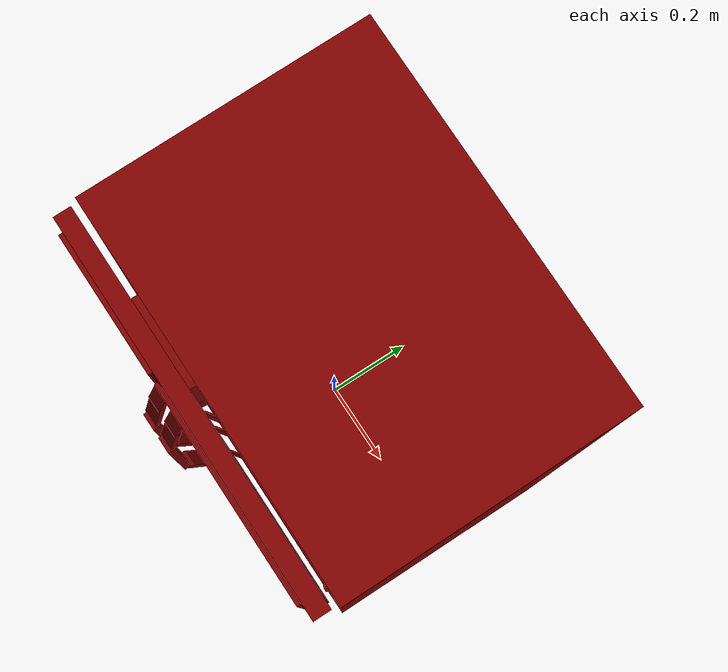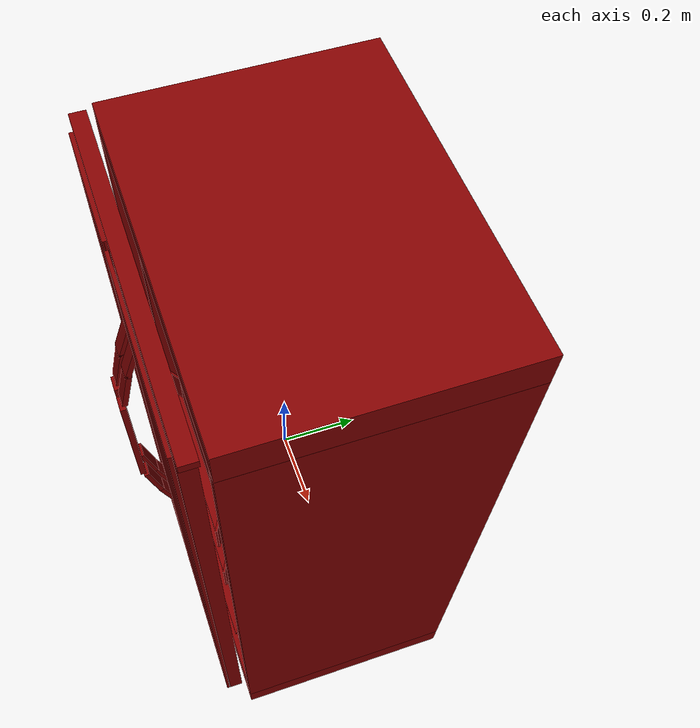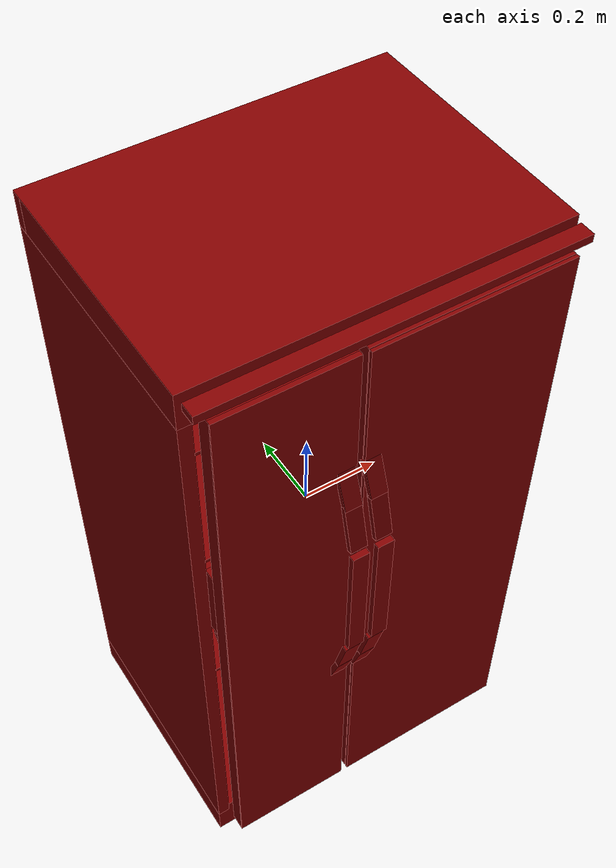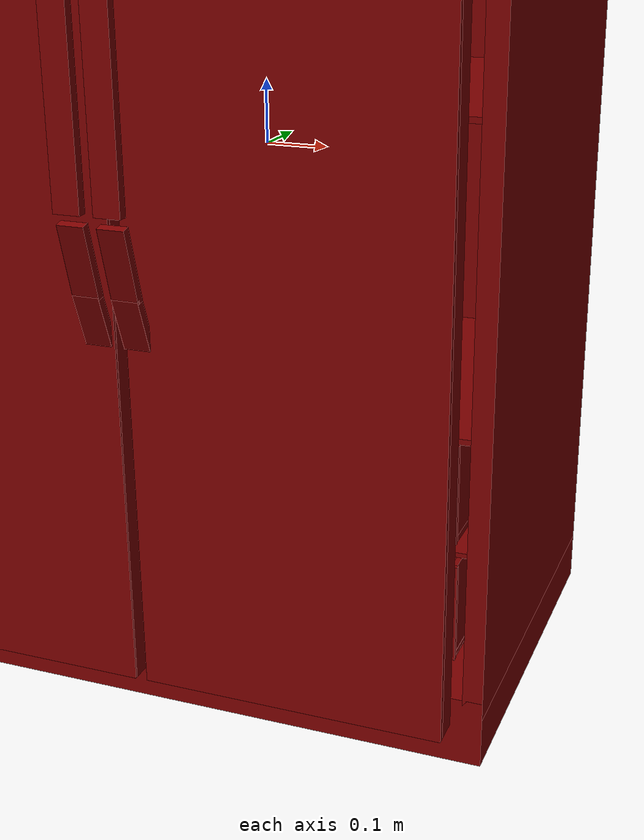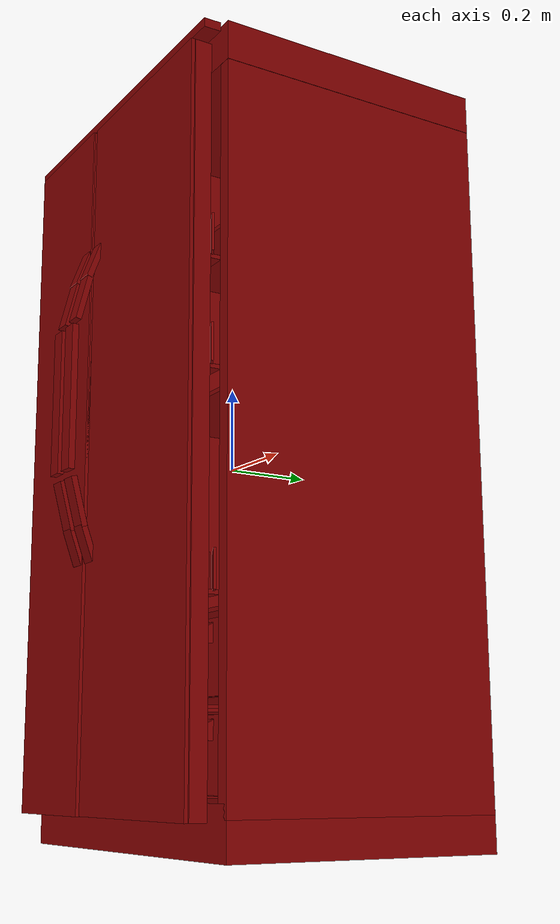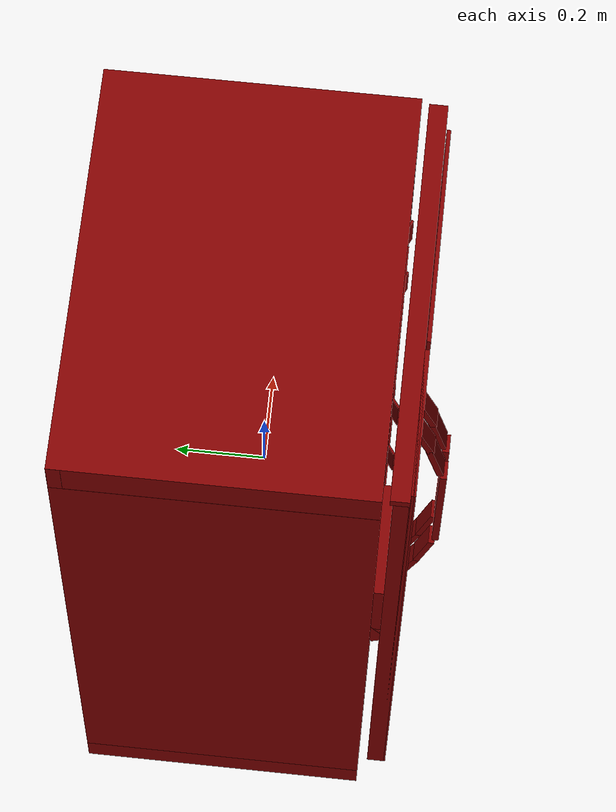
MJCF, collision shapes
<?xml version='1.0' encoding='UTF-8'?>
<mujoco model="model">
  <option timestep="0.002" gravity="0.0 0.0 -9.81"/>
  <compiler angle="radian"/>
  <asset>
    <mesh file="visuals/freezer_door.obj" name="freezer_door_vis"/>
    <mesh file="visuals/fridge_door.obj" name="fridge_door_vis"/>
    <mesh file="visuals/fridge_door_Clear.obj" name="fridge_door_Clear_vis"/>
    <mesh file="visuals/fridge_drawer0.obj" name="fridge_drawer0_vis"/>
    <mesh file="visuals/fridge_drawer1.obj" name="fridge_drawer1_vis"/>
    <mesh file="visuals/Body001.obj" name="Body001_vis"/>
    <mesh file="visuals/Body001_Clear.obj" name="Body001_Clear_vis"/>
    <mesh file="visuals/Body002.obj" name="Body002_vis"/>
    <texture file="visuals/T_BC001.png" name="Body001_material" type="2d"/>
    <material name="Body001_material" rgba="1 1 1 1.0" texture="Body001_material" shininess="3" specular="3"/>
    <texture file="visuals/T_BC001.png" name="freezer_door_material" type="2d"/>
    <material name="freezer_door_material" rgba="1 1 1 1.0" texture="freezer_door_material" shininess="3" specular="3"/>
    <texture file="visuals/T_BC001.png" name="fridge_door_material" type="2d"/>
    <material name="fridge_door_material" rgba="1 1 1 1.0" texture="fridge_door_material" shininess="3" specular="3"/>
    <texture file="visuals/T_BC001.png" name="fridge_door_Clear_material" type="2d"/>
    <material name="fridge_door_Clear_material" rgba="1 1 1 0.699999988079071" texture="fridge_door_Clear_material" shininess="0.4472135901451111" specular="0.3103448502657381"/>
    <texture file="visuals/T_BC001.png" name="fridge_drawer0_material" type="2d"/>
    <material name="fridge_drawer0_material" rgba="1 1 1 1.0" texture="fridge_drawer0_material" shininess="0.4472135901451111" specular="0.3103448502657381"/>
    <texture file="visuals/T_BC001.png" name="fridge_drawer1_material" type="2d"/>
    <material name="fridge_drawer1_material" rgba="1 1 1 1.0" texture="fridge_drawer1_material" shininess="0.4472135901451111" specular="0.3103448502657381"/>
    <texture file="visuals/T_BC001.png" name="Body002_material" type="2d"/>
    <material name="Body002_material" rgba="1 1 1 1.0" texture="Body002_material" shininess="0.4472135901451111" specular="0.3103448502657381"/>
    <texture file="visuals/T_BC001.png" name="Body001_Clear_material" type="2d"/>
    <material name="Body001_Clear_material" rgba="1 1 1 0.699999988079071" texture="Body001_Clear_material" shininess="0.4472135901451111" specular="0.3103448502657381"/>
  </asset>
  <default>
    <default class="visual">
      <geom conaffinity="0" contype="0" group="1" type="mesh"/>
    </default>
    <default class="collision">
      <geom group="0" rgba="0.5 0 0 0.5"/>
    </default>
    <default class="spawn">
      <geom group="0" rgba="1 1 1 0.5" contype="0" conaffinity="0"/>
      <site group="0" rgba="1 1 1 0.5"/>
    </default>
    <default class="region">
      <geom group="1" conaffinity="0" contype="0" rgba="0 1 0 0"/>
    </default>
  </default>
  <worldbody>
    <body>
      <body name="object">
        <geom mesh="Body001_vis" type="mesh" solimp="0.998 0.998 0.001" solref="0.001 1" friction="0.95 0.3 0.1" class="visual" material="Body001_material"/>
        <geom class="collision" type="box" pos="0.1857621818780899 0.07823625952005386 -0.37710896134376526" size="0.23391325771808624 0.2834528386592865 0.004587478470057249" quat="1.0 0.0 0.0 0.0"/>
        <geom class="collision" type="box" pos="-0.2555658519268036 0.1246451884508133 0.4883212447166443" size="0.17424075305461884 0.23704399168491364 0.004587478470057249" quat="1.0 0.0 0.0 0.0"/>
        <geom class="collision" type="box" pos="-0.2555658519268036 0.1246451735496521 0.11032214015722275" size="0.17424075305461884 0.23704399168491364 0.004587497562170029" quat="1.0 0.0 0.0 0.0"/>
        <geom class="collision" type="box" pos="-0.2555658519268036 0.12679541110992432 -0.3789890706539154" size="0.17424075305461884 0.23489367961883545 0.004587478470057249" quat="1.0 0.0 0.0 0.0"/>
        <geom class="collision" type="box" pos="0.1857621818780899 0.07534710317850113 0.4726426899433136" size="0.23391325771808624 0.286342054605484 0.004587478470057249" quat="1.0 0.0 0.0 0.0"/>
        <geom class="collision" type="box" pos="0.1857621818780899 0.07534709572792053 0.09502177685499191" size="0.23391325771808624 0.286342054605484 0.004587478470057249" quat="1.0 0.0 0.0 0.0"/>
        <geom class="collision" type="box" pos="-1.2393051292747259e-05 0.05373276770114899 0.8346233367919922" size="0.45489364862442017 0.3316700756549835 0.045325685292482376" quat="1.0 0.0 0.0 0.0"/>
        <geom class="collision" type="box" pos="-0.43911370635032654 0.05373269319534302 -0.005165405105799437" size="0.015845296904444695 0.3316701352596283 0.7937540411949158" quat="1.0 0.0 0.0 0.0"/>
        <geom class="collision" type="box" pos="-0.00010623910930007696 0.3705941438674927 0.04041892662644386" size="0.45485106110572815 0.014529271051287651 0.8393383622169495" quat="1.0 0.0 0.0 0.0"/>
        <geom class="collision" type="box" pos="1.039507333189249e-05 0.05372992902994156 -0.8244232535362244" size="0.4549238085746765 0.33166739344596863 0.05550837516784668" quat="1.0 0.0 0.0 0.0"/>
        <geom class="collision" type="box" pos="0.4390815794467926 0.05368977040052414 -0.005165405105799437" size="0.01586782932281494 0.33162721991539 0.7937540411949158" quat="1.0 0.0 0.0 0.0"/>
        <geom class="collision" type="box" pos="-0.07669150084257126 0.032751839607954025 -0.005165405105799437" size="0.01868603192269802 0.31068918108940125 0.7937540411949158" quat="1.0 0.0 0.0 0.0"/>
        <geom class="collision" type="box" pos="0.0005018045194447041 -0.31318265199661255 0.8621639013290405" size="0.44800040125846863 0.01981038600206375 0.010303191840648651" quat="1.0 0.0 0.0 0.0"/>
        <geom class="collision" type="box" pos="0.3762957453727722 0.07344324886798859 -0.573501467704773" size="0.2593842148780823 0.04980453476309776 0.0039545088075101376" quat="0.7071068286895752 0.0 0.0 -0.7071067094802856"/>
        <geom class="collision" type="box" pos="-0.006168872117996216 0.07344324886798859 -0.573501467704773" size="0.2593842148780823 0.04980453476309776 0.0039545088075101376" quat="0.7071068286895752 0.0 0.0 -0.7071067094802856"/>
        <body name="freezer_door">
          <joint axis="0.0 0.0 -1.0" pos="-0.4100518822669983 -0.3178715705871582 0.019686415791511536" limited="true" name="freezer_door_joint" range="0.0 1.5707963267948966" type="hinge" damping="1" frictionloss="1" armature=".01" stiffness="0.05"/>
          <geom mesh="freezer_door_vis" type="mesh" solimp="0.998 0.998 0.001" solref="0.001 1" friction="0.95 0.3 0.1" class="visual" material="freezer_door_material"/>
          <geom class="collision" type="box" pos="-0.27392125129699707 -0.2638382017612457 0.1462937891483307" size="0.1261339783668518 0.039346158504486084 0.10778778046369553" quat="1.0 0.0 0.0 0.0"/>
          <geom class="collision" type="box" pos="-0.26060521602630615 -0.31943896412849426 0.019686393439769745" size="0.16058406233787537 0.019878141582012177 0.8260967135429382" quat="1.0 0.0 0.0 0.0"/>
          <geom class="collision" type="box" pos="-0.1257620006799698 -0.35278213024139404 -0.20009051263332367" size="0.021149661391973495 0.007177915424108505 0.043824028223752975" quat="0.985453724861145 0.1699439287185669 3.427198495372315e-18 -2.3632046037454226e-19" name="freezer_door_handle_1"/>
          <geom class="collision" type="box" pos="-0.1257620006799698 -0.3800656199455261 -0.1069147139787674" size="0.021149661391973495 0.007177915424108505 0.05910010635852814" quat="0.9918653964996338 0.12729094922542572 7.4363480199850075e-19 3.076294003866601e-19" name="freezer_door_handle_2"/>
          <geom class="collision" type="box" pos="-0.1257620006799698 -0.38011083006858826 0.38942912220954895" size="0.02095995470881462 0.007113531697541475 0.06160798296332359" quat="0.9923778772354126 -0.12323198467493057 -5.1660953043346054e-18 -5.631640514692845e-19" name="freezer_door_handle_3"/>
          <geom class="collision" type="box" pos="-0.1257620006799698 -0.3531390130519867 0.4849521219730377" size="0.02095995470881462 0.007113530300557613 0.04750537499785423" quat="0.9841106534004211 -0.1775561422109604 -6.794957446287795e-18 -1.24171607607696e-18" name="freezer_door_handle_4"/>
          <geom class="collision" type="box" pos="-0.27392125129699707 -0.2787473201751709 0.00643356004729867" size="0.1261339783668518 0.021196728572249413 0.040684595704078674" quat="0.9596711993217468 -0.28112488985061646 6.242226510147307e-17 1.817213670379881e-24"/>
          <geom class="collision" type="box" pos="-0.12469910830259323 -0.4025536775588989 0.14048346877098083" size="0.020981041714549065 0.00782430823892355 0.17416147887706757" quat="7.549790126404332e-08 0.0 0.0 1.0" name="freezer_door_handle_main"/>
          <geom class="collision" type="box" pos="-0.26060521602630615 -0.3374604880809784 0.019686393439769745" size="0.16058406233787537 0.005703422706574202 0.8260968327522278" quat="1.0 0.0 0.0 0.0" name="freezer_door_main"/>
        </body>
        <body name="fridge_door">
          <joint axis="0.0 0.0 1.0" pos="0.41863223910331726 -0.3178715705871582 0.019686415791511536" limited="true" name="fridge_door_joint" range="0.0 1.5707963267948966" type="hinge" damping="1" frictionloss="1" armature=".01" stiffness="0.05"/>
          <geom mesh="fridge_door_vis" type="mesh" solimp="0.998 0.998 0.001" solref="0.001 1" friction="0.95 0.3 0.1" class="visual" material="fridge_door_material"/>
          <geom class="collision" type="box" pos="0.1750108003616333 -0.2544350028038025 -0.31065794825553894" size="0.1655995100736618 0.0024915917310863733 0.04236834496259689" quat="1.0 0.0 0.0 0.0"/>
          <geom class="collision" type="box" pos="-0.024031072854995728 -0.2729649245738983 -0.31065794825553894" size="0.03484678640961647 0.0024915917310863733 0.04236834496259689" quat="0.9524669051170349 0.0 0.0 0.30464211106300354"/>
          <geom class="collision" type="box" pos="0.1750108003616333 -0.26492470502853394 -0.3564080595970154" size="0.20364147424697876 0.015007716603577137 0.004774631932377815" quat="1.0 0.0 0.0 0.0"/>
          <geom class="collision" type="box" pos="0.1750108003616333 -0.2544350028038025 0.1643996387720108" size="0.1655995100736618 0.0024915917310863733 0.04236834496259689" quat="1.0 0.0 0.0 0.0"/>
          <geom class="collision" type="box" pos="0.3687587380409241 -0.2673346698284149 0.1643996387720108" size="0.03484678640961647 0.0024915917310863733 0.04236834496259689" quat="0.9744662046432495 0.0 0.0 -0.22453421354293823"/>
          <geom class="collision" type="box" pos="-0.024031072854995728 -0.2729649245738983 0.1643996387720108" size="0.03484678640961647 0.0024915917310863733 0.04236834496259689" quat="0.9524669051170349 0.0 0.0 0.30464211106300354"/>
          <geom class="collision" type="box" pos="0.1750108003616333 -0.26492470502853394 0.11864953488111496" size="0.20364147424697876 0.015007716603577137 0.004774631932377815" quat="1.0 0.0 0.0 0.0"/>
          <geom class="collision" type="box" pos="0.1750108003616333 -0.2544350028038025 0.40882930159568787" size="0.1655995100736618 0.0024915917310863733 0.04236834496259689" quat="1.0 0.0 0.0 0.0"/>
          <geom class="collision" type="box" pos="0.3687587380409241 -0.2673346698284149 0.40882930159568787" size="0.03484678640961647 0.0024915917310863733 0.04236834496259689" quat="0.9744662046432495 0.0 0.0 -0.22453421354293823"/>
          <geom class="collision" type="box" pos="-0.024031072854995728 -0.2729649245738983 0.40882930159568787" size="0.03484678640961647 0.0024915917310863733 0.04236834496259689" quat="0.9524669051170349 0.0 0.0 0.30464211106300354"/>
          <geom class="collision" type="box" pos="0.1750108003616333 -0.26492470502853394 0.3630791902542114" size="0.20364147424697876 0.015007716603577137 0.004774631932377815" quat="1.0 0.0 0.0 0.0"/>
          <geom class="collision" type="box" pos="0.3687587380409241 -0.25894492864608765 -0.3120562434196472" size="0.03484678640961647 0.0024915917310863733 0.04236834496259689" quat="0.9744662046432495 0.0 0.0 -0.22453421354293823"/>
          <geom class="collision" type="box" pos="0.16463975608348846 -0.3133353888988495 0.018078608438372612" size="0.2447778731584549 0.019861992448568344 0.8231651782989502" quat="1.0 0.0 0.0 0.0"/>
          <geom class="collision" type="box" pos="-0.06262528151273727 -0.35278213024139404 -0.20009051263332367" size="0.021149661391973495 0.007177915424108505 0.043824028223752975" quat="0.985453724861145 0.1699439287185669 3.427198495372315e-18 -2.3632046037454226e-19" name="fridge_door_handle_1"/>
          <geom class="collision" type="box" pos="-0.06262528151273727 -0.3800656199455261 -0.1069147139787674" size="0.021149661391973495 0.007177915424108505 0.05910010635852814" quat="0.9918653964996338 0.12729094922542572 7.4363480199850075e-19 3.076294003866601e-19" name="fridge_door_handle_2"/>
          <geom class="collision" type="box" pos="-0.06262528151273727 -0.38011083006858826 0.38942912220954895" size="0.02095995470881462 0.007113531697541475 0.06160798296332359" quat="0.9923778772354126 -0.12323198467493057 -5.1660953043346054e-18 -5.631640514692845e-19" name="fridge_door_handle_3"/>
          <geom class="collision" type="box" pos="-0.06262528151273727 -0.3531390130519867 0.4849521219730377" size="0.02095995470881462 0.007113530300557613 0.04750537499785423" quat="0.9841106534004211 -0.1775561422109604 -6.794957446287795e-18 -1.24171607607696e-18" name="fridge_door_handle_4"/>
          <geom class="collision" type="box" pos="-0.06156238913536072 -0.4025536775588989 0.14048346877098083" size="0.020981041714549065 0.00782430823892355 0.17416147887706757" quat="7.549790126404332e-08 0.0 0.0 1.0" name="fridge_door_handle_main"/>
          <geom class="collision" type="box" pos="0.16463975608348846 -0.339411199092865 0.018078608438372612" size="0.2447778731584549 0.004256414249539375 0.8231651782989502" quat="1.0 0.0 0.0 0.0" name="fridge_door_main"/>
          <body name="fridge_door_Clear">
            <geom mesh="fridge_door_Clear_vis" type="mesh" solimp="0.998 0.998 0.001" solref="0.001 1" friction="0.95 0.3 0.1" class="visual" material="fridge_door_Clear_material"/>
            <geom class="collision" type="box" pos="0.1750108003616333 -0.2544350028038025 -0.31065794825553894" size="0.1655995100736618 0.0024915917310863733 0.04236834496259689" quat="1.0 0.0 0.0 0.0"/>
            <geom class="collision" type="box" pos="-0.024031072854995728 -0.2729649245738983 -0.31065794825553894" size="0.03484678640961647 0.0024915917310863733 0.04236834496259689" quat="0.9524669051170349 0.0 0.0 0.30464211106300354"/>
            <geom class="collision" type="box" pos="0.1750108003616333 -0.26492470502853394 -0.3564080595970154" size="0.20364147424697876 0.015007716603577137 0.004774631932377815" quat="1.0 0.0 0.0 0.0"/>
            <geom class="collision" type="box" pos="0.1750108003616333 -0.2544350028038025 0.1643996387720108" size="0.1655995100736618 0.0024915917310863733 0.04236834496259689" quat="1.0 0.0 0.0 0.0"/>
            <geom class="collision" type="box" pos="0.3687587380409241 -0.2673346698284149 0.1643996387720108" size="0.03484678640961647 0.0024915917310863733 0.04236834496259689" quat="0.9744662046432495 0.0 0.0 -0.22453421354293823"/>
            <geom class="collision" type="box" pos="-0.024031072854995728 -0.2729649245738983 0.1643996387720108" size="0.03484678640961647 0.0024915917310863733 0.04236834496259689" quat="0.9524669051170349 0.0 0.0 0.30464211106300354"/>
            <geom class="collision" type="box" pos="0.1750108003616333 -0.26492470502853394 0.11864953488111496" size="0.20364147424697876 0.015007716603577137 0.004774631932377815" quat="1.0 0.0 0.0 0.0"/>
            <geom class="collision" type="box" pos="0.1750108003616333 -0.2544350028038025 0.40882930159568787" size="0.1655995100736618 0.0024915917310863733 0.04236834496259689" quat="1.0 0.0 0.0 0.0"/>
            <geom class="collision" type="box" pos="0.3687587380409241 -0.2673346698284149 0.40882930159568787" size="0.03484678640961647 0.0024915917310863733 0.04236834496259689" quat="0.9744662046432495 0.0 0.0 -0.22453421354293823"/>
            <geom class="collision" type="box" pos="-0.024031072854995728 -0.2729649245738983 0.40882930159568787" size="0.03484678640961647 0.0024915917310863733 0.04236834496259689" quat="0.9524669051170349 0.0 0.0 0.30464211106300354"/>
            <geom class="collision" type="box" pos="0.1750108003616333 -0.26492470502853394 0.3630791902542114" size="0.20364147424697876 0.015007716603577137 0.004774631932377815" quat="1.0 0.0 0.0 0.0"/>
            <geom class="collision" type="box" pos="0.3687587380409241 -0.25894492864608765 -0.3120562434196472" size="0.03484678640961647 0.0024915917310863733 0.04236834496259689" quat="0.9744662046432495 0.0 0.0 -0.22453421354293823"/>
          </body>
        </body>
        <body name="fridge_drawer0">
          <geom class="region" name="reg_fridge_drawer0" type="box" pos="0.17762610781937838 0.06598439067602158 -0.6706388592720032" size="0.1918276928588748 0.24363186007738113 0.07176835632324219"/>
          <joint axis="0.0 -1.0 0.0" pos="0.17862935364246368 0.055411919951438904 -0.676008939743042" limited="true" name="fridge_drawer0_joint" range="0.0 0.45" type="slide" damping="1" frictionloss="1" armature=".01" stiffness="0.05"/>
          <geom mesh="fridge_drawer0_vis" type="mesh" solimp="0.998 0.998 0.001" solref="0.001 1" friction="0.95 0.3 0.1" class="visual" material="fridge_drawer0_material"/>
          <geom class="collision" type="box" pos="0.17761138081550598 0.06682964414358139 -0.7532496452331543" size="0.20552383363246918 0.25132739543914795 0.005459532607346773" quat="1.0 0.0 0.0 0.0"/>
          <geom class="collision" type="box" pos="-0.023464251309633255 0.06682964414358139 -0.6752712726593018" size="0.004280097782611847 0.25132739543914795 0.08169250935316086" quat="1.0 0.0 0.0 0.0"/>
          <geom class="collision" type="box" pos="0.3788551092147827 0.06682964414358139 -0.6752712726593018" size="0.004280097782611847 0.25132739543914795 0.08169250935316086" quat="1.0 0.0 0.0 0.0"/>
          <geom class="collision" type="box" pos="0.17862842977046967 0.3188420534133911 -0.6752712726593018" size="0.20637275278568268 0.003921613562852144 0.08169250935316086" quat="1.0 0.0 0.0 0.0"/>
          <geom class="collision" type="box" pos="0.17862842977046967 -0.18704943358898163 -0.6752712726593018" size="0.20637275278568268 0.003921613562852144 0.08169250935316086" quat="1.0 0.0 0.0 0.0"/>
          <geom class="collision" type="box" pos="0.10805603116750717 -0.20097972452640533 -0.6246511936187744" size="0.00213892781175673 0.010442287661135197 0.02150658518075943" quat="1.0 0.0 0.0 0.0"/>
          <geom class="collision" type="box" pos="0.24781082570552826 -0.20097972452640533 -0.6246511936187744" size="0.00213892781175673 0.010442287661135197 0.02150658518075943" quat="1.0 0.0 0.0 0.0"/>
          <geom class="collision" type="box" pos="0.18039585649967194 -0.20097972452640533 -0.6071418523788452" size="0.07020089030265808 0.010442288592457771 0.001035698689520359" quat="0.9766175746917725 0.21498394012451172 -4.773602405017379e-17 -7.192791825569596e-25"/>
          <geom class="collision" type="box" pos="0.18039585649967194 -0.21078814566135406 -0.6272753477096558" size="0.07020089030265808 0.0006382691790349782 0.018404146656394005" quat="1.0 0.0 0.0 0.0"/>
        </body>
        <body name="fridge_drawer1">
          <geom class="region" name="reg_fridge_drawer1" type="box" pos="0.17611028999090195 0.06587650626897812 -0.4688256233930588" size="0.18980823999643326 0.24303211814165115 0.07106175816059113"/>
          <joint axis="0.0 -1.0 0.0" pos="0.17775417864322662 0.05541194975376129 -0.4748176634311676" limited="true" name="fridge_drawer1_joint" range="0.0 0.45" type="slide" damping="1" frictionloss="1" armature=".01" stiffness="0.05"/>
          <geom mesh="fridge_drawer1_vis" type="mesh" solimp="0.998 0.998 0.001" solref="0.001 1" friction="0.95 0.3 0.1" class="visual" material="fridge_drawer1_material"/>
          <geom class="collision" type="box" pos="0.17560487985610962 0.06682964414358139 -0.5517356991767883" size="0.2044031023979187 0.25132739543914795 0.005459532607346773" quat="1.0 0.0 0.0 0.0"/>
          <geom class="collision" type="box" pos="-0.024374276399612427 0.06682964414358139 -0.4737573564052582" size="0.004256757907569408 0.25132739543914795 0.08169250935316086" quat="1.0 0.0 0.0 0.0"/>
          <geom class="collision" type="box" pos="0.37575122714042664 0.06682964414358139 -0.4737573564052582" size="0.004256757907569408 0.25132739543914795 0.08169250935316086" quat="1.0 0.0 0.0 0.0"/>
          <geom class="collision" type="box" pos="0.176616370677948 0.3188420534133911 -0.4737573564052582" size="0.20524738729000092 0.003921613562852144 0.08169250935316086" quat="1.0 0.0 0.0 0.0"/>
          <geom class="collision" type="box" pos="0.176616370677948 -0.18704943358898163 -0.4737573564052582" size="0.20524738729000092 0.003921613562852144 0.08169250935316086" quat="1.0 0.0 0.0 0.0"/>
          <geom class="collision" type="box" pos="0.1064288318157196 -0.20097972452640533 -0.42313721776008606" size="0.002127263927832246 0.010442287661135197 0.02150658518075943" quat="1.0 0.0 0.0 0.0"/>
          <geom class="collision" type="box" pos="0.24542151391506195 -0.20097972452640533 -0.42313721776008606" size="0.002127263927832246 0.010442287661135197 0.02150658518075943" quat="1.0 0.0 0.0 0.0"/>
          <geom class="collision" type="box" pos="0.17837417125701904 -0.20097972452640533 -0.40562793612480164" size="0.06981807947158813 0.010442288592457771 0.001035698689520359" quat="0.9766175746917725 0.21498394012451172 -4.773602405017379e-17 -7.192791825569596e-25"/>
          <geom class="collision" type="box" pos="0.17837417125701904 -0.21078814566135406 -0.4257614314556122" size="0.06981807947158813 0.0006382691790349782 0.018404146656394005" quat="1.0 0.0 0.0 0.0"/>
        </body>
        <body name="Body002">
          <geom mesh="Body002_vis" type="mesh" solimp="0.998 0.998 0.001" solref="0.001 1" friction="0.95 0.3 0.1" class="visual" material="Body002_material"/>
          <body name="Body001_Clear">
            <geom mesh="Body001_Clear_vis" type="mesh" solimp="0.998 0.998 0.001" solref="0.001 1" friction="0.95 0.3 0.1" class="visual" material="Body001_Clear_material"/>
            <geom class="collision" type="box" pos="0.1857621818780899 0.07823625952005386 -0.37710896134376526" size="0.23391325771808624 0.2834528386592865 0.004587478470057249" quat="1.0 0.0 0.0 0.0"/>
            <geom class="collision" type="box" pos="-0.2555658519268036 0.1246451884508133 0.4883212447166443" size="0.17424075305461884 0.23704399168491364 0.004587478470057249" quat="1.0 0.0 0.0 0.0"/>
            <geom class="collision" type="box" pos="-0.2555658519268036 0.1246451735496521 0.11032214015722275" size="0.17424075305461884 0.23704399168491364 0.004587497562170029" quat="1.0 0.0 0.0 0.0"/>
            <geom class="collision" type="box" pos="-0.2555658519268036 0.12679541110992432 -0.3789890706539154" size="0.17424075305461884 0.23489367961883545 0.004587478470057249" quat="1.0 0.0 0.0 0.0"/>
            <geom class="collision" type="box" pos="0.1857621818780899 0.07534710317850113 0.4726426899433136" size="0.23391325771808624 0.286342054605484 0.004587478470057249" quat="1.0 0.0 0.0 0.0"/>
            <geom class="collision" type="box" pos="0.1857621818780899 0.07534709572792053 0.09502177685499191" size="0.23391325771808624 0.286342054605484 0.004587478470057249" quat="1.0 0.0 0.0 0.0"/>
          </body>
        </body>
        <geom class="region" name="reg_freezer_shelf0" type="box" pos="-0.2607766091823578 0.12070702761411667 -0.5765344500541687" size="0.15465338325500488 0.22883873230218887 0.18535770273208618"/>
        <geom class="region" name="reg_freezer_shelf1" type="box" pos="-0.2607766091823578 0.12070702761411667 -0.13413849845528603" size="0.15465338325500488 0.22883873230218887 0.23122061213850975"/>
        <geom class="region" name="reg_freezer_shelf2" type="box" pos="-0.2607766091823578 0.11830543354153633 0.2992769330739975" size="0.15465338325500488 0.2312403263747692 0.1770011464357376"/>
        <geom class="region" name="reg_freezer_shelf3" type="box" pos="-0.2607766091823578 0.11830543354153633 0.6422107517719269" size="0.15465338325500488 0.2312403263747692 0.14095590806007385"/>
        <geom class="region" name="reg_fridge_shelf0" type="box" pos="0.18496131338179111 0.07181316614151001 -0.14185544103384018" size="0.23217986880242825 0.2777680883407593 0.2228560352921486"/>
        <geom class="region" name="reg_fridge_shelf1" type="box" pos="0.18496131338179111 0.0694417655467987 0.2846340835094452" size="0.23217986880242825 0.2801394889354706 0.17674542760849"/>
        <geom class="region" name="reg_fridge_shelf2" type="box" pos="0.18496131338179111 0.0694417655467987 0.6333852410316467" size="0.23217986880242825 0.2801394889354706 0.1491422781944275"/>
        <geom class="region" name="reg_main" type="box" pos="-7.450580596923828e-09 0.033397555351257324 0.0" size="0.45599998331069946 0.3851831088066101 0.8809998760223389"/>
      </body>
    </body>
  </worldbody>
  <actuator>
    <motor name="freezer_door_joint_actuator" joint="freezer_door_joint" gear="50"/>
    <motor name="fridge_door_joint_actuator" joint="fridge_door_joint" gear="50"/>
    <motor name="fridge_drawer0_joint_actuator" joint="fridge_drawer0_joint" gear="50"/>
    <motor name="fridge_drawer1_joint_actuator" joint="fridge_drawer1_joint" gear="50"/>
  </actuator>
</mujoco>
